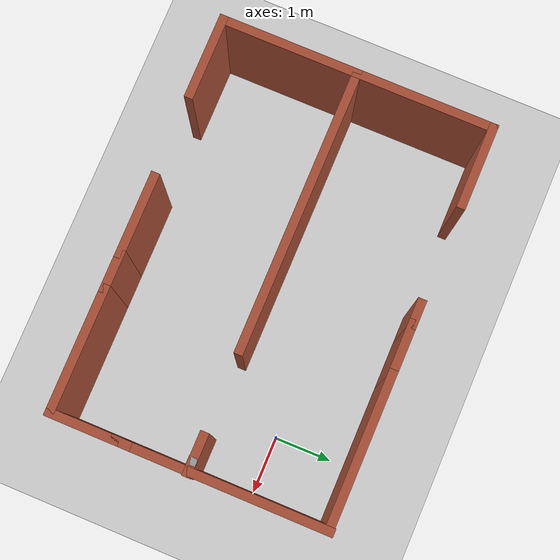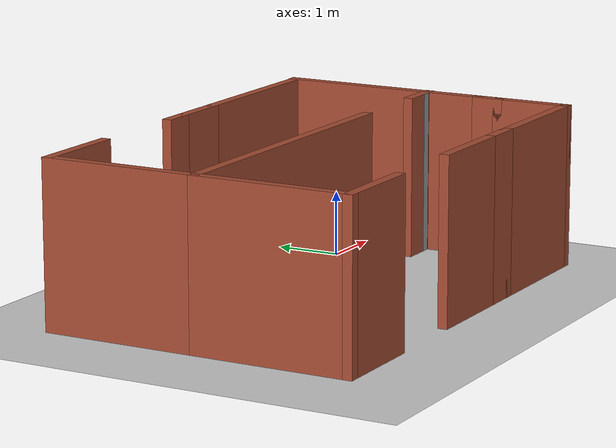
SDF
<sdf version="1.6">
 <world name="default">
  <light name="sun" type="directional">
   <pose>0 0 10 0 -0 0</pose>
   <diffuse>0.8 0.8 0.8 1</diffuse>
   <specular>0.2 0.2 0.2 1</specular>
   <attenuation>
    <range>1000</range>
    <constant>0.9</constant>
    <linear>0.01</linear>
    <quadratic>0.001</quadratic>
   </attenuation>
   <direction>-0.5 0.1 -0.9</direction>
  </light>
  <model name="ground_plane">
   <static>1</static>
   <link name="link">
    <collision name="collision">
     <geometry><plane><normal>0 0 1</normal><size>100 100</size></plane></geometry>
     <surface>
      <contact><collide_bitmask>65535</collide_bitmask></contact>
      <friction><ode><mu>100</mu><mu2>50</mu2></ode></friction>
     </surface>
    </collision>
    <visual name="visual">
     <cast_shadows>0</cast_shadows>
     <geometry><plane><normal>0 0 1</normal><size>100 100</size></plane></geometry>
     <material>
      <script><uri>file://media/materials/scripts/gazebo.material</uri><name>Gazebo/Grey</name></script>
     </material>
    </visual>
   </link>
  </model>
  <gravity>0 0 -9.8</gravity>
  <magnetic_field>6e-06 2.3e-05 -4.2e-05</magnetic_field>
  <atmosphere type="adiabatic"/>
  <physics name="default_physics" default="0" type="ode">
   <max_step_size>0.001</max_step_size>
   <real_time_factor>1</real_time_factor>
   <real_time_update_rate>1000</real_time_update_rate>
  </physics>
  <scene><ambient>0.4 0.4 0.4 1</ambient><background>0.7 0.7 0.7 1</background><shadows>1</shadows></scene>
  <audio><device>default</device></audio>
  <spherical_coordinates>
   <surface_model>EARTH_WGS84</surface_model>
   <latitude_deg>0</latitude_deg>
   <longitude_deg>0</longitude_deg>
   <elevation>0</elevation>
   <heading_deg>0</heading_deg>
  </spherical_coordinates>
  <model name="UAV">
   <link name="Wall_0">
    <pose>2.37922 -2.33907 0 0 -0 0</pose>
    <visual name="Wall_0_Visual">
     <pose>0 0 1.25 0 -0 0</pose>
     <geometry><box><size>2.25 0.15 2.5</size></box></geometry>
     <material>
      <script><uri>file://media/materials/scripts/gazebo.material</uri><name>Gazebo/Bricks</name></script>
      <ambient>1 1 1 1</ambient>
     </material>
     <meta><layer>0</layer></meta>
    </visual>
    <collision name="Wall_0_Collision">
     <pose>0 0 1.25 0 -0 0</pose>
     <geometry><box><size>2.25 0.15 2.5</size></box></geometry>
     <surface>
      <friction>
       <ode><mu>1</mu><mu2>1</mu2><fdir1>0 0 0</fdir1><slip1>0</slip1><slip2>0</slip2></ode>
       <torsional>
        <coefficient>1</coefficient>
        <patch_radius>0</patch_radius>
        <surface_radius>0</surface_radius>
        <use_patch_radius>1</use_patch_radius>
        <ode><slip>0</slip></ode>
       </torsional>
      </friction>
      <bounce><restitution_coefficient>0</restitution_coefficient><threshold>1e+06</threshold></bounce>
      <contact>
       <collide_without_contact>0</collide_without_contact>
       <collide_without_contact_bitmask>1</collide_without_contact_bitmask>
       <collide_bitmask>1</collide_bitmask>
       <ode>
        <soft_cfm>0</soft_cfm>
        <soft_erp>0.2</soft_erp>
        <kp>1e+13</kp>
        <kd>1</kd>
        <max_vel>0.01</max_vel>
        <min_depth>0</min_depth>
       </ode>
       <bullet>
        <split_impulse>1</split_impulse>
        <split_impulse_penetration_threshold>-0.01</split_impulse_penetration_threshold>
        <soft_cfm>0</soft_cfm>
        <soft_erp>0.2</soft_erp>
        <kp>1e+13</kp>
        <kd>1</kd>
       </bullet>
      </contact>
     </surface>
    </collision>
   </link>
   <link name="Wall_1">
    <pose>3.42922 -1.78907 0 0 -0 1.5708</pose>
    <visual name="Wall_1_Visual">
     <pose>0 0 1.25 0 -0 0</pose>
     <geometry><box><size>1.25 0.15 2.5</size></box></geometry>
     <material>
      <script><uri>file://media/materials/scripts/gazebo.material</uri><name>Gazebo/Bricks</name></script>
      <ambient>1 1 1 1</ambient>
     </material>
     <meta><layer>0</layer></meta>
    </visual>
    <collision name="Wall_1_Collision">
     <pose>0 0 1.25 0 -0 0</pose>
     <geometry><box><size>1.25 0.15 2.5</size></box></geometry>
     <surface>
      <friction>
       <ode><mu>1</mu><mu2>1</mu2><fdir1>0 0 0</fdir1><slip1>0</slip1><slip2>0</slip2></ode>
       <torsional>
        <coefficient>1</coefficient>
        <patch_radius>0</patch_radius>
        <surface_radius>0</surface_radius>
        <use_patch_radius>1</use_patch_radius>
        <ode><slip>0</slip></ode>
       </torsional>
      </friction>
      <bounce><restitution_coefficient>0</restitution_coefficient><threshold>1e+06</threshold></bounce>
      <contact>
       <collide_without_contact>0</collide_without_contact>
       <collide_without_contact_bitmask>1</collide_without_contact_bitmask>
       <collide_bitmask>1</collide_bitmask>
       <ode>
        <soft_cfm>0</soft_cfm>
        <soft_erp>0.2</soft_erp>
        <kp>1e+13</kp>
        <kd>1</kd>
        <max_vel>0.01</max_vel>
        <min_depth>0</min_depth>
       </ode>
       <bullet>
        <split_impulse>1</split_impulse>
        <split_impulse_penetration_threshold>-0.01</split_impulse_penetration_threshold>
        <soft_cfm>0</soft_cfm>
        <soft_erp>0.2</soft_erp>
        <kp>1e+13</kp>
        <kd>1</kd>
       </bullet>
      </contact>
     </surface>
    </collision>
   </link>
   <link name="Wall_10">
    <pose>2.12922 2.33313 0 0 -0 3.14159</pose>
    <visual name="Wall_10_Visual">
     <pose>0 0 1.25 0 -0 0</pose>
     <geometry><box><size>2.75 0.15 2.5</size></box></geometry>
     <material>
      <script><uri>file://media/materials/scripts/gazebo.material</uri><name>Gazebo/Bricks</name></script>
      <ambient>1 1 1 1</ambient>
     </material>
     <meta><layer>0</layer></meta>
    </visual>
    <collision name="Wall_10_Collision">
     <pose>0 0 1.25 0 -0 0</pose>
     <geometry><box><size>2.75 0.15 2.5</size></box></geometry>
     <surface>
      <friction>
       <ode><mu>1</mu><mu2>1</mu2><fdir1>0 0 0</fdir1><slip1>0</slip1><slip2>0</slip2></ode>
       <torsional>
        <coefficient>1</coefficient>
        <patch_radius>0</patch_radius>
        <surface_radius>0</surface_radius>
        <use_patch_radius>1</use_patch_radius>
        <ode><slip>0</slip></ode>
       </torsional>
      </friction>
      <bounce><restitution_coefficient>0</restitution_coefficient><threshold>1e+06</threshold></bounce>
      <contact>
       <collide_without_contact>0</collide_without_contact>
       <collide_without_contact_bitmask>1</collide_without_contact_bitmask>
       <collide_bitmask>1</collide_bitmask>
       <ode>
        <soft_cfm>0</soft_cfm>
        <soft_erp>0.2</soft_erp>
        <kp>1e+13</kp>
        <kd>1</kd>
        <max_vel>0.01</max_vel>
        <min_depth>0</min_depth>
       </ode>
       <bullet>
        <split_impulse>1</split_impulse>
        <split_impulse_penetration_threshold>-0.01</split_impulse_penetration_threshold>
        <soft_cfm>0</soft_cfm>
        <soft_erp>0.2</soft_erp>
        <kp>1e+13</kp>
        <kd>1</kd>
       </bullet>
      </contact>
     </surface>
    </collision>
   </link>
   <link name="Wall_21">
    <pose>1.02922 -2.33907 0 0 -0 3.14159</pose>
    <visual name="Wall_21_Visual">
     <pose>0 0 1.25 0 -0 0</pose>
     <geometry><box><size>0.75 0.15 2.5</size></box></geometry>
     <material>
      <script><uri>file://media/materials/scripts/gazebo.material</uri><name>Gazebo/Bricks</name></script>
      <ambient>1 1 1 1</ambient>
     </material>
     <meta><layer>0</layer></meta>
    </visual>
    <collision name="Wall_21_Collision">
     <pose>0 0 1.25 0 -0 0</pose>
     <geometry><box><size>0.75 0.15 2.5</size></box></geometry>
     <surface>
      <friction>
       <ode><mu>1</mu><mu2>1</mu2><fdir1>0 0 0</fdir1><slip1>0</slip1><slip2>0</slip2></ode>
       <torsional>
        <coefficient>1</coefficient>
        <patch_radius>0</patch_radius>
        <surface_radius>0</surface_radius>
        <use_patch_radius>1</use_patch_radius>
        <ode><slip>0</slip></ode>
       </torsional>
      </friction>
      <bounce><restitution_coefficient>0</restitution_coefficient><threshold>1e+06</threshold></bounce>
      <contact>
       <collide_without_contact>0</collide_without_contact>
       <collide_without_contact_bitmask>1</collide_without_contact_bitmask>
       <collide_bitmask>1</collide_bitmask>
       <ode>
        <soft_cfm>0</soft_cfm>
        <soft_erp>0.2</soft_erp>
        <kp>1e+13</kp>
        <kd>1</kd>
        <max_vel>0.01</max_vel>
        <min_depth>0</min_depth>
       </ode>
       <bullet>
        <split_impulse>1</split_impulse>
        <split_impulse_penetration_threshold>-0.01</split_impulse_penetration_threshold>
        <soft_cfm>0</soft_cfm>
        <soft_erp>0.2</soft_erp>
        <kp>1e+13</kp>
        <kd>1</kd>
       </bullet>
      </contact>
     </surface>
    </collision>
   </link>
   <link name="Wall_27">
    <pose>0.054224 -2.33907 0 0 -0 3.14159</pose>
    <visual name="Wall_27_Visual">
     <pose>0 0 1.25 0 -0 0</pose>
     <geometry><box><size>1.5 0.15 2.5</size></box></geometry>
     <material>
      <script><uri>file://media/materials/scripts/gazebo.material</uri><name>Gazebo/Bricks</name></script>
      <ambient>1 1 1 1</ambient>
     </material>
     <meta><layer>0</layer></meta>
    </visual>
    <collision name="Wall_27_Collision">
     <pose>0 0 1.25 0 -0 0</pose>
     <geometry><box><size>1.5 0.15 2.5</size></box></geometry>
     <surface>
      <friction>
       <ode><mu>1</mu><mu2>1</mu2><fdir1>0 0 0</fdir1><slip1>0</slip1><slip2>0</slip2></ode>
       <torsional>
        <coefficient>1</coefficient>
        <patch_radius>0</patch_radius>
        <surface_radius>0</surface_radius>
        <use_patch_radius>1</use_patch_radius>
        <ode><slip>0</slip></ode>
       </torsional>
      </friction>
      <bounce><restitution_coefficient>0</restitution_coefficient><threshold>1e+06</threshold></bounce>
      <contact>
       <collide_without_contact>0</collide_without_contact>
       <collide_without_contact_bitmask>1</collide_without_contact_bitmask>
       <collide_bitmask>1</collide_bitmask>
       <ode>
        <soft_cfm>0</soft_cfm>
        <soft_erp>0.2</soft_erp>
        <kp>1e+13</kp>
        <kd>1</kd>
        <max_vel>0.01</max_vel>
        <min_depth>0</min_depth>
       </ode>
       <bullet>
        <split_impulse>1</split_impulse>
        <split_impulse_penetration_threshold>-0.01</split_impulse_penetration_threshold>
        <soft_cfm>0</soft_cfm>
        <soft_erp>0.2</soft_erp>
        <kp>1e+13</kp>
        <kd>1</kd>
       </bullet>
      </contact>
     </surface>
    </collision>
   </link>
   <link name="Wall_29">
    <pose>-2.77349 -2.35062 0 0 -0 3.14159</pose>
    <visual name="Wall_29_Visual">
     <pose>0 0 1.25 0 -0 0</pose>
     <geometry><box><size>1.5 0.15 2.5</size></box></geometry>
     <material>
      <script><uri>file://media/materials/scripts/gazebo.material</uri><name>Gazebo/Bricks</name></script>
      <ambient>1 1 1 1</ambient>
     </material>
     <meta><layer>0</layer></meta>
    </visual>
    <collision name="Wall_29_Collision">
     <pose>0 0 1.25 0 -0 0</pose>
     <geometry><box><size>1.5 0.15 2.5</size></box></geometry>
     <surface>
      <friction>
       <ode><mu>1</mu><mu2>1</mu2><fdir1>0 0 0</fdir1><slip1>0</slip1><slip2>0</slip2></ode>
       <torsional>
        <coefficient>1</coefficient>
        <patch_radius>0</patch_radius>
        <surface_radius>0</surface_radius>
        <use_patch_radius>1</use_patch_radius>
        <ode><slip>0</slip></ode>
       </torsional>
      </friction>
      <bounce><restitution_coefficient>0</restitution_coefficient><threshold>1e+06</threshold></bounce>
      <contact>
       <collide_without_contact>0</collide_without_contact>
       <collide_without_contact_bitmask>1</collide_without_contact_bitmask>
       <collide_bitmask>1</collide_bitmask>
       <ode>
        <soft_cfm>0</soft_cfm>
        <soft_erp>0.2</soft_erp>
        <kp>1e+13</kp>
        <kd>1</kd>
        <max_vel>0.01</max_vel>
        <min_depth>0</min_depth>
       </ode>
       <bullet>
        <split_impulse>1</split_impulse>
        <split_impulse_penetration_threshold>-0.01</split_impulse_penetration_threshold>
        <soft_cfm>0</soft_cfm>
        <soft_erp>0.2</soft_erp>
        <kp>1e+13</kp>
        <kd>1</kd>
       </bullet>
      </contact>
     </surface>
    </collision>
   </link>
   <link name="Wall_32">
    <pose>-3.44849 -1.17562 0 0 -0 1.5708</pose>
    <visual name="Wall_32_Visual">
     <pose>0 0 1.25 0 -0 0</pose>
     <geometry><box><size>2.5 0.15 2.5</size></box></geometry>
     <material>
      <script><uri>file://media/materials/scripts/gazebo.material</uri><name>Gazebo/Bricks</name></script>
      <ambient>1 1 1 1</ambient>
     </material>
     <meta><layer>0</layer></meta>
    </visual>
    <collision name="Wall_32_Collision">
     <pose>0 0 1.25 0 -0 0</pose>
     <geometry><box><size>2.5 0.15 2.5</size></box></geometry>
     <surface>
      <friction>
       <ode><mu>1</mu><mu2>1</mu2><fdir1>0 0 0</fdir1><slip1>0</slip1><slip2>0</slip2></ode>
       <torsional>
        <coefficient>1</coefficient>
        <patch_radius>0</patch_radius>
        <surface_radius>0</surface_radius>
        <use_patch_radius>1</use_patch_radius>
        <ode><slip>0</slip></ode>
       </torsional>
      </friction>
      <bounce><restitution_coefficient>0</restitution_coefficient><threshold>1e+06</threshold></bounce>
      <contact>
       <collide_without_contact>0</collide_without_contact>
       <collide_without_contact_bitmask>1</collide_without_contact_bitmask>
       <collide_bitmask>1</collide_bitmask>
       <ode>
        <soft_cfm>0</soft_cfm>
        <soft_erp>0.2</soft_erp>
        <kp>1e+13</kp>
        <kd>1</kd>
        <max_vel>0.01</max_vel>
        <min_depth>0</min_depth>
       </ode>
       <bullet>
        <split_impulse>1</split_impulse>
        <split_impulse_penetration_threshold>-0.01</split_impulse_penetration_threshold>
        <soft_cfm>0</soft_cfm>
        <soft_erp>0.2</soft_erp>
        <kp>1e+13</kp>
        <kd>1</kd>
       </bullet>
      </contact>
     </surface>
    </collision>
   </link>
   <link name="Wall_33">
    <pose>-1.02349 -0.000616 0 0 -0 0</pose>
    <visual name="Wall_33_Visual">
     <pose>0 0 1.25 0 -0 0</pose>
     <geometry><box><size>5 0.15 2.5</size></box></geometry>
     <material>
      <script><uri>file://media/materials/scripts/gazebo.material</uri><name>Gazebo/Bricks</name></script>
      <ambient>1 1 1 1</ambient>
     </material>
     <meta><layer>0</layer></meta>
    </visual>
    <collision name="Wall_33_Collision">
     <pose>0 0 1.25 0 -0 0</pose>
     <geometry><box><size>5 0.15 2.5</size></box></geometry>
     <surface>
      <friction>
       <ode><mu>1</mu><mu2>1</mu2><fdir1>0 0 0</fdir1><slip1>0</slip1><slip2>0</slip2></ode>
       <torsional>
        <coefficient>1</coefficient>
        <patch_radius>0</patch_radius>
        <surface_radius>0</surface_radius>
        <use_patch_radius>1</use_patch_radius>
        <ode><slip>0</slip></ode>
       </torsional>
      </friction>
      <bounce><restitution_coefficient>0</restitution_coefficient><threshold>1e+06</threshold></bounce>
      <contact>
       <collide_without_contact>0</collide_without_contact>
       <collide_without_contact_bitmask>1</collide_without_contact_bitmask>
       <collide_bitmask>1</collide_bitmask>
       <ode>
        <soft_cfm>0</soft_cfm>
        <soft_erp>0.2</soft_erp>
        <kp>1e+13</kp>
        <kd>1</kd>
        <max_vel>0.01</max_vel>
        <min_depth>0</min_depth>
       </ode>
       <bullet>
        <split_impulse>1</split_impulse>
        <split_impulse_penetration_threshold>-0.01</split_impulse_penetration_threshold>
        <soft_cfm>0</soft_cfm>
        <soft_erp>0.2</soft_erp>
        <kp>1e+13</kp>
        <kd>1</kd>
       </bullet>
      </contact>
     </surface>
    </collision>
   </link>
   <link name="Wall_36">
    <pose>3.25519 -0.008469 0 0 -0 0</pose>
    <visual name="Wall_36_Visual">
     <pose>0 0 1.25 0 -0 0</pose>
     <geometry><box><size>0.15 0.15 2.5</size></box></geometry>
     <material>
      <script><uri>file://media/materials/scripts/gazebo.material</uri><name>Gazebo/Grey</name></script>
      <ambient>1 1 1 1</ambient>
     </material>
     <meta><layer>0</layer></meta>
    </visual>
    <collision name="Wall_36_Collision">
     <pose>0 0 1.25 0 -0 0</pose>
     <geometry><box><size>0.15 0.15 2.5</size></box></geometry>
     <surface>
      <friction>
       <ode><mu>1</mu><mu2>1</mu2><fdir1>0 0 0</fdir1><slip1>0</slip1><slip2>0</slip2></ode>
       <torsional>
        <coefficient>1</coefficient>
        <patch_radius>0</patch_radius>
        <surface_radius>0</surface_radius>
        <use_patch_radius>1</use_patch_radius>
        <ode><slip>0</slip></ode>
       </torsional>
      </friction>
      <bounce><restitution_coefficient>0</restitution_coefficient><threshold>1e+06</threshold></bounce>
      <contact>
       <collide_without_contact>0</collide_without_contact>
       <collide_without_contact_bitmask>1</collide_without_contact_bitmask>
       <collide_bitmask>1</collide_bitmask>
       <ode>
        <soft_cfm>0</soft_cfm>
        <soft_erp>0.2</soft_erp>
        <kp>1e+13</kp>
        <kd>1</kd>
        <max_vel>0.01</max_vel>
        <min_depth>0</min_depth>
       </ode>
       <bullet>
        <split_impulse>1</split_impulse>
        <split_impulse_penetration_threshold>-0.01</split_impulse_penetration_threshold>
        <soft_cfm>0</soft_cfm>
        <soft_erp>0.2</soft_erp>
        <kp>1e+13</kp>
        <kd>1</kd>
       </bullet>
      </contact>
     </surface>
    </collision>
   </link>
   <link name="Wall_38">
    <pose>3.14849 -0.002935 0 0 -0 0</pose>
    <visual name="Wall_38_Visual">
     <pose>0 0 1.25 0 -0 0</pose>
     <geometry><box><size>0.75 0.15 2.5</size></box></geometry>
     <material>
      <script><uri>file://media/materials/scripts/gazebo.material</uri><name>Gazebo/Bricks</name></script>
      <ambient>1 1 1 1</ambient>
     </material>
     <meta><layer>0</layer></meta>
    </visual>
    <collision name="Wall_38_Collision">
     <pose>0 0 1.25 0 -0 0</pose>
     <geometry><box><size>0.75 0.15 2.5</size></box></geometry>
     <surface>
      <friction>
       <ode><mu>1</mu><mu2>1</mu2><fdir1>0 0 0</fdir1><slip1>0</slip1><slip2>0</slip2></ode>
       <torsional>
        <coefficient>1</coefficient>
        <patch_radius>0</patch_radius>
        <surface_radius>0</surface_radius>
        <use_patch_radius>1</use_patch_radius>
        <ode><slip>0</slip></ode>
       </torsional>
      </friction>
      <bounce><restitution_coefficient>0</restitution_coefficient><threshold>1e+06</threshold></bounce>
      <contact>
       <collide_without_contact>0</collide_without_contact>
       <collide_without_contact_bitmask>1</collide_without_contact_bitmask>
       <collide_bitmask>1</collide_bitmask>
       <ode>
        <soft_cfm>0</soft_cfm>
        <soft_erp>0.2</soft_erp>
        <kp>1e+13</kp>
        <kd>1</kd>
        <max_vel>0.01</max_vel>
        <min_depth>0</min_depth>
       </ode>
       <bullet>
        <split_impulse>1</split_impulse>
        <split_impulse_penetration_threshold>-0.01</split_impulse_penetration_threshold>
        <soft_cfm>0</soft_cfm>
        <soft_erp>0.2</soft_erp>
        <kp>1e+13</kp>
        <kd>1</kd>
       </bullet>
      </contact>
     </surface>
    </collision>
   </link>
   <link name="Wall_40">
    <pose>-3.44849 1.17438 0 0 -0 1.5708</pose>
    <visual name="Wall_40_Visual">
     <pose>0 0 1.25 0 -0 0</pose>
     <geometry><box><size>2.5 0.15 2.5</size></box></geometry>
     <material>
      <script><uri>file://media/materials/scripts/gazebo.material</uri><name>Gazebo/Bricks</name></script>
      <ambient>1 1 1 1</ambient>
     </material>
     <meta><layer>0</layer></meta>
    </visual>
    <collision name="Wall_40_Collision">
     <pose>0 0 1.25 0 -0 0</pose>
     <geometry><box><size>2.5 0.15 2.5</size></box></geometry>
     <surface>
      <friction>
       <ode><mu>1</mu><mu2>1</mu2><fdir1>0 0 0</fdir1><slip1>0</slip1><slip2>0</slip2></ode>
       <torsional>
        <coefficient>1</coefficient>
        <patch_radius>0</patch_radius>
        <surface_radius>0</surface_radius>
        <use_patch_radius>1</use_patch_radius>
        <ode><slip>0</slip></ode>
       </torsional>
      </friction>
      <bounce><restitution_coefficient>0</restitution_coefficient><threshold>1e+06</threshold></bounce>
      <contact>
       <collide_without_contact>0</collide_without_contact>
       <collide_without_contact_bitmask>1</collide_without_contact_bitmask>
       <collide_bitmask>1</collide_bitmask>
       <ode>
        <soft_cfm>0</soft_cfm>
        <soft_erp>0.2</soft_erp>
        <kp>1e+13</kp>
        <kd>1</kd>
        <max_vel>0.01</max_vel>
        <min_depth>0</min_depth>
       </ode>
       <bullet>
        <split_impulse>1</split_impulse>
        <split_impulse_penetration_threshold>-0.01</split_impulse_penetration_threshold>
        <soft_cfm>0</soft_cfm>
        <soft_erp>0.2</soft_erp>
        <kp>1e+13</kp>
        <kd>1</kd>
       </bullet>
      </contact>
     </surface>
    </collision>
   </link>
   <link name="Wall_41">
    <pose>-2.77349 2.34938 0 0 -0 0</pose>
    <visual name="Wall_41_Visual">
     <pose>0 0 1.25 0 -0 0</pose>
     <geometry><box><size>1.5 0.15 2.5</size></box></geometry>
     <material>
      <script><uri>file://media/materials/scripts/gazebo.material</uri><name>Gazebo/Bricks</name></script>
      <ambient>1 1 1 1</ambient>
     </material>
     <meta><layer>0</layer></meta>
    </visual>
    <collision name="Wall_41_Collision">
     <pose>0 0 1.25 0 -0 0</pose>
     <geometry><box><size>1.5 0.15 2.5</size></box></geometry>
     <surface>
      <friction>
       <ode><mu>1</mu><mu2>1</mu2><fdir1>0 0 0</fdir1><slip1>0</slip1><slip2>0</slip2></ode>
       <torsional>
        <coefficient>1</coefficient>
        <patch_radius>0</patch_radius>
        <surface_radius>0</surface_radius>
        <use_patch_radius>1</use_patch_radius>
        <ode><slip>0</slip></ode>
       </torsional>
      </friction>
      <bounce><restitution_coefficient>0</restitution_coefficient><threshold>1e+06</threshold></bounce>
      <contact>
       <collide_without_contact>0</collide_without_contact>
       <collide_without_contact_bitmask>1</collide_without_contact_bitmask>
       <collide_bitmask>1</collide_bitmask>
       <ode>
        <soft_cfm>0</soft_cfm>
        <soft_erp>0.2</soft_erp>
        <kp>1e+13</kp>
        <kd>1</kd>
        <max_vel>0.01</max_vel>
        <min_depth>0</min_depth>
       </ode>
       <bullet>
        <split_impulse>1</split_impulse>
        <split_impulse_penetration_threshold>-0.01</split_impulse_penetration_threshold>
        <soft_cfm>0</soft_cfm>
        <soft_erp>0.2</soft_erp>
        <kp>1e+13</kp>
        <kd>1</kd>
       </bullet>
      </contact>
     </surface>
    </collision>
   </link>
   <link name="Wall_43">
    <pose>0.404224 2.33313 0 0 -0 3.14159</pose>
    <visual name="Wall_43_Visual">
     <pose>0 0 1.25 0 -0 0</pose>
     <geometry><box><size>1 0.15 2.5</size></box></geometry>
     <material>
      <script><uri>file://media/materials/scripts/gazebo.material</uri><name>Gazebo/Bricks</name></script>
      <ambient>1 1 1 1</ambient>
     </material>
     <meta><layer>0</layer></meta>
    </visual>
    <collision name="Wall_43_Collision">
     <pose>0 0 1.25 0 -0 0</pose>
     <geometry><box><size>1 0.15 2.5</size></box></geometry>
     <surface>
      <friction>
       <ode><mu>1</mu><mu2>1</mu2><fdir1>0 0 0</fdir1><slip1>0</slip1><slip2>0</slip2></ode>
       <torsional>
        <coefficient>1</coefficient>
        <patch_radius>0</patch_radius>
        <surface_radius>0</surface_radius>
        <use_patch_radius>1</use_patch_radius>
        <ode><slip>0</slip></ode>
       </torsional>
      </friction>
      <bounce><restitution_coefficient>0</restitution_coefficient><threshold>1e+06</threshold></bounce>
      <contact>
       <collide_without_contact>0</collide_without_contact>
       <collide_without_contact_bitmask>1</collide_without_contact_bitmask>
       <collide_bitmask>1</collide_bitmask>
       <ode>
        <soft_cfm>0</soft_cfm>
        <soft_erp>0.2</soft_erp>
        <kp>1e+13</kp>
        <kd>1</kd>
        <max_vel>0.01</max_vel>
        <min_depth>0</min_depth>
       </ode>
       <bullet>
        <split_impulse>1</split_impulse>
        <split_impulse_penetration_threshold>-0.01</split_impulse_penetration_threshold>
        <soft_cfm>0</soft_cfm>
        <soft_erp>0.2</soft_erp>
        <kp>1e+13</kp>
        <kd>1</kd>
       </bullet>
      </contact>
     </surface>
    </collision>
   </link>
   <link name="Wall_44">
    <pose>-0.195776 2.33313 0 0 -0 3.14159</pose>
    <visual name="Wall_44_Visual">
     <pose>0 0 1.25 0 -0 0</pose>
     <geometry><box><size>0.5 0.15 2.5</size></box></geometry>
     <material>
      <script><uri>file://media/materials/scripts/gazebo.material</uri><name>Gazebo/Bricks</name></script>
      <ambient>1 1 1 1</ambient>
     </material>
     <meta><layer>0</layer></meta>
    </visual>
    <collision name="Wall_44_Collision">
     <pose>0 0 1.25 0 -0 0</pose>
     <geometry><box><size>0.5 0.15 2.5</size></box></geometry>
     <surface>
      <friction>
       <ode><mu>1</mu><mu2>1</mu2><fdir1>0 0 0</fdir1><slip1>0</slip1><slip2>0</slip2></ode>
       <torsional>
        <coefficient>1</coefficient>
        <patch_radius>0</patch_radius>
        <surface_radius>0</surface_radius>
        <use_patch_radius>1</use_patch_radius>
        <ode><slip>0</slip></ode>
       </torsional>
      </friction>
      <bounce><restitution_coefficient>0</restitution_coefficient><threshold>1e+06</threshold></bounce>
      <contact>
       <collide_without_contact>0</collide_without_contact>
       <collide_without_contact_bitmask>1</collide_without_contact_bitmask>
       <collide_bitmask>1</collide_bitmask>
       <ode>
        <soft_cfm>0</soft_cfm>
        <soft_erp>0.2</soft_erp>
        <kp>1e+13</kp>
        <kd>1</kd>
        <max_vel>0.01</max_vel>
        <min_depth>0</min_depth>
       </ode>
       <bullet>
        <split_impulse>1</split_impulse>
        <split_impulse_penetration_threshold>-0.01</split_impulse_penetration_threshold>
        <soft_cfm>0</soft_cfm>
        <soft_erp>0.2</soft_erp>
        <kp>1e+13</kp>
        <kd>1</kd>
       </bullet>
      </contact>
     </surface>
    </collision>
   </link>
   <link name="Wall_6">
    <pose>3.42922 -1.06407 0 0 -0 1.5708</pose>
    <visual name="Wall_6_Visual">
     <pose>0 0 1.25 0 -0 0</pose>
     <geometry><box><size>0.5 0.15 2.5</size></box></geometry>
     <material>
      <script><uri>file://media/materials/scripts/gazebo.material</uri><name>Gazebo/Bricks</name></script>
      <ambient>1 1 1 1</ambient>
     </material>
     <meta><layer>0</layer></meta>
    </visual>
    <collision name="Wall_6_Collision">
     <pose>0 0 1.25 0 -0 0</pose>
     <geometry><box><size>0.5 0.15 2.5</size></box></geometry>
     <surface>
      <friction>
       <ode><mu>1</mu><mu2>1</mu2><fdir1>0 0 0</fdir1><slip1>0</slip1><slip2>0</slip2></ode>
       <torsional>
        <coefficient>1</coefficient>
        <patch_radius>0</patch_radius>
        <surface_radius>0</surface_radius>
        <use_patch_radius>1</use_patch_radius>
        <ode><slip>0</slip></ode>
       </torsional>
      </friction>
      <bounce><restitution_coefficient>0</restitution_coefficient><threshold>1e+06</threshold></bounce>
      <contact>
       <collide_without_contact>0</collide_without_contact>
       <collide_without_contact_bitmask>1</collide_without_contact_bitmask>
       <collide_bitmask>1</collide_bitmask>
       <ode>
        <soft_cfm>0</soft_cfm>
        <soft_erp>0.2</soft_erp>
        <kp>1e+13</kp>
        <kd>1</kd>
        <max_vel>0.01</max_vel>
        <min_depth>0</min_depth>
       </ode>
       <bullet>
        <split_impulse>1</split_impulse>
        <split_impulse_penetration_threshold>-0.01</split_impulse_penetration_threshold>
        <soft_cfm>0</soft_cfm>
        <soft_erp>0.2</soft_erp>
        <kp>1e+13</kp>
        <kd>1</kd>
       </bullet>
      </contact>
     </surface>
    </collision>
   </link>
   <link name="Wall_9">
    <pose>3.42922 0.730773 0 0 -0 1.5708</pose>
    <visual name="Wall_9_Visual">
     <pose>0 0 1.25 0 -0 0</pose>
     <geometry><box><size>3.38969 0.15 2.5</size></box></geometry>
     <material>
      <script><uri>file://media/materials/scripts/gazebo.material</uri><name>Gazebo/Bricks</name></script>
      <ambient>1 1 1 1</ambient>
     </material>
     <meta><layer>0</layer></meta>
    </visual>
    <collision name="Wall_9_Collision">
     <pose>0 0 1.25 0 -0 0</pose>
     <geometry><box><size>3.38969 0.15 2.5</size></box></geometry>
     <surface>
      <friction>
       <ode><mu>1</mu><mu2>1</mu2><fdir1>0 0 0</fdir1><slip1>0</slip1><slip2>0</slip2></ode>
       <torsional>
        <coefficient>1</coefficient>
        <patch_radius>0</patch_radius>
        <surface_radius>0</surface_radius>
        <use_patch_radius>1</use_patch_radius>
        <ode><slip>0</slip></ode>
       </torsional>
      </friction>
      <bounce><restitution_coefficient>0</restitution_coefficient><threshold>1e+06</threshold></bounce>
      <contact>
       <collide_without_contact>0</collide_without_contact>
       <collide_without_contact_bitmask>1</collide_without_contact_bitmask>
       <collide_bitmask>1</collide_bitmask>
       <ode>
        <soft_cfm>0</soft_cfm>
        <soft_erp>0.2</soft_erp>
        <kp>1e+13</kp>
        <kd>1</kd>
        <max_vel>0.01</max_vel>
        <min_depth>0</min_depth>
       </ode>
       <bullet>
        <split_impulse>1</split_impulse>
        <split_impulse_penetration_threshold>-0.01</split_impulse_penetration_threshold>
        <soft_cfm>0</soft_cfm>
        <soft_erp>0.2</soft_erp>
        <kp>1e+13</kp>
        <kd>1</kd>
       </bullet>
      </contact>
     </surface>
    </collision>
   </link>
   <static>1</static>
   <pose>-2.34922 -1.01093 0 0 -0 0</pose>
  </model>
 </world>
</sdf>
